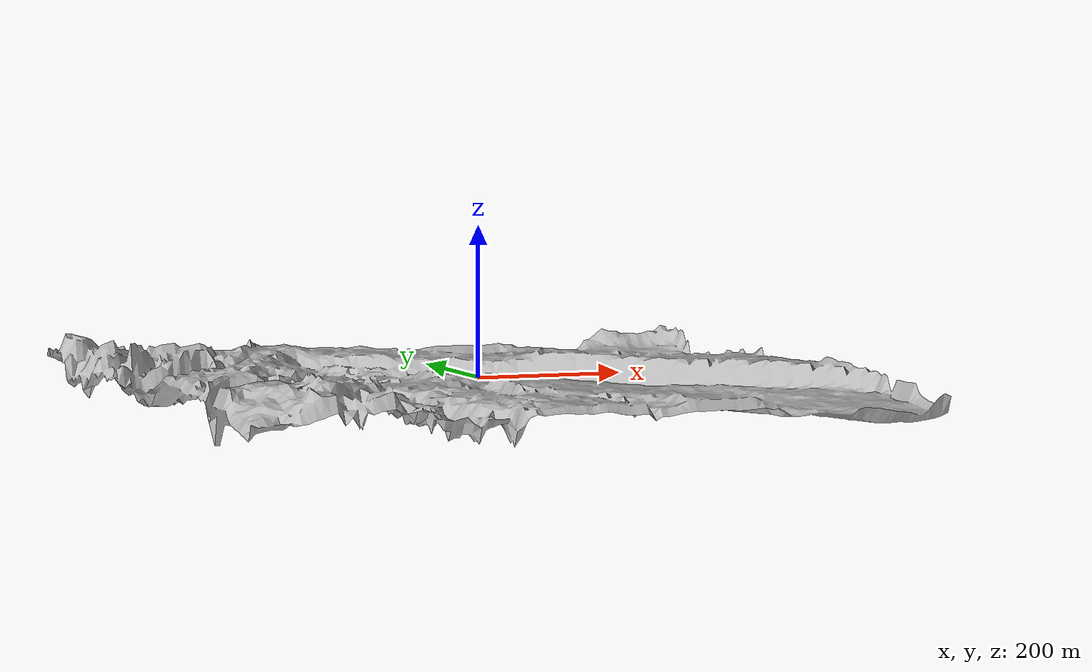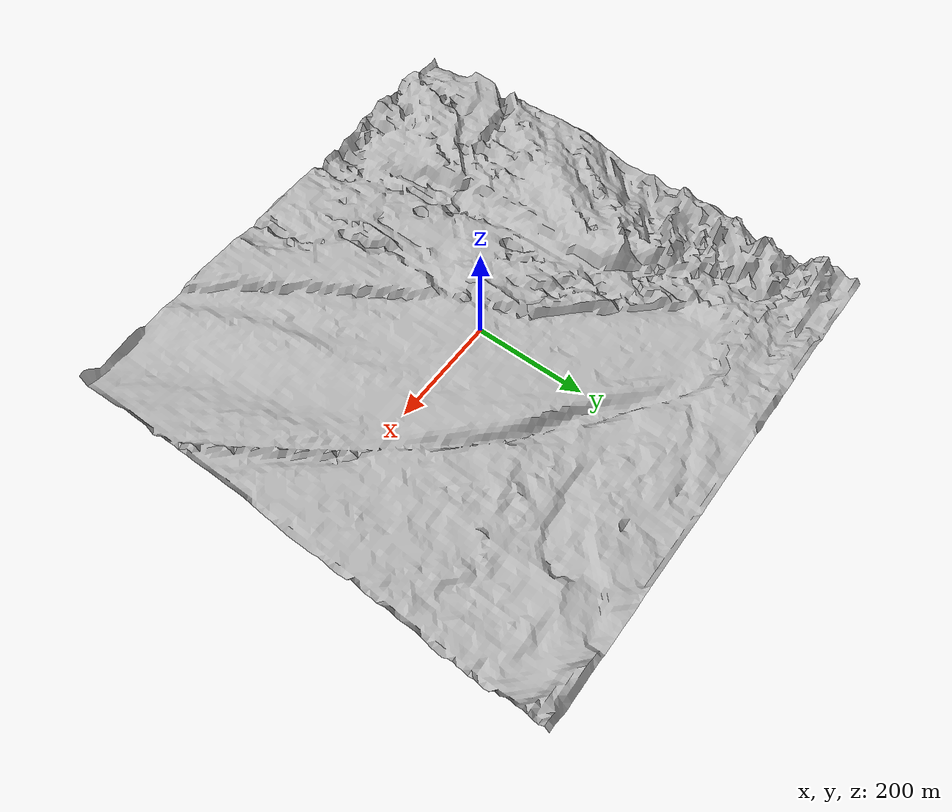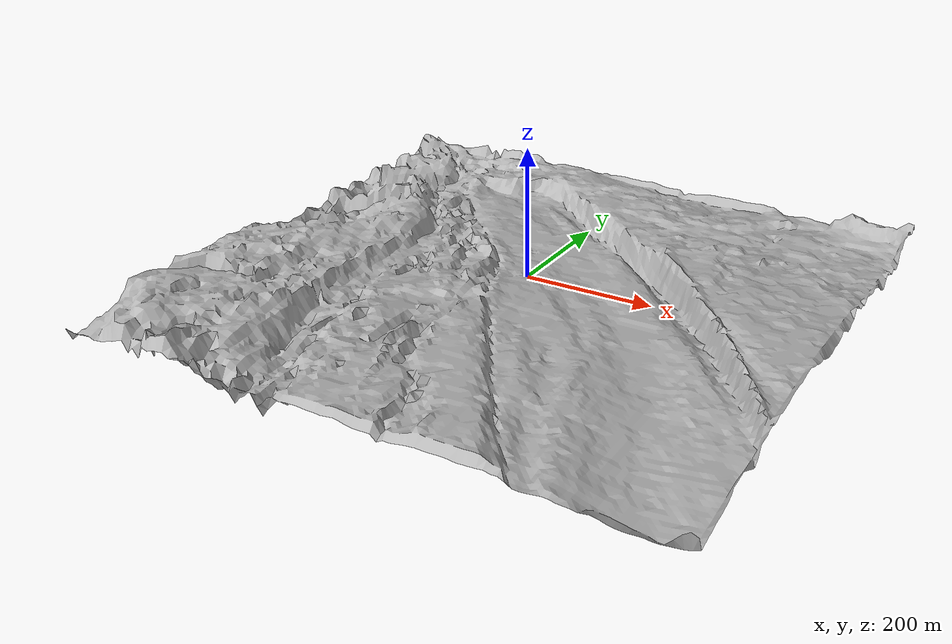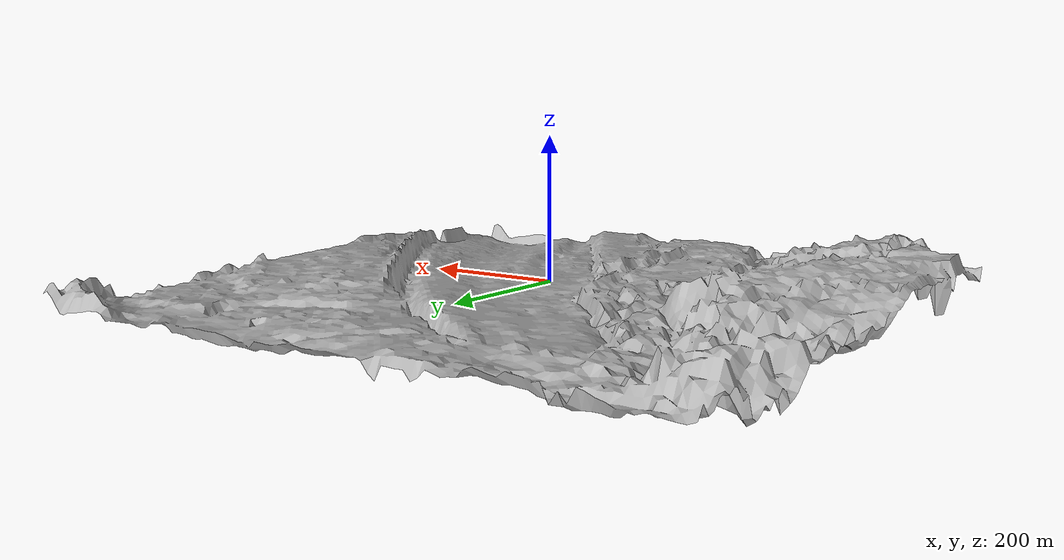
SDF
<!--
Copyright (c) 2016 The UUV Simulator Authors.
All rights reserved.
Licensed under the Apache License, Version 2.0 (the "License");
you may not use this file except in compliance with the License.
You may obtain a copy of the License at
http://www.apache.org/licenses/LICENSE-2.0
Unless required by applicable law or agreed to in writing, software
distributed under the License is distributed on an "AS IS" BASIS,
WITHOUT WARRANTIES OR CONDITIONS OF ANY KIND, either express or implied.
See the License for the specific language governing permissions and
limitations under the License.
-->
<?xml version="1.0" ?>
<sdf version="1.5">
  <model name="sand_heightmap">
    <static>true</static>
    <link name="link">
      <collision name="ground">
        <pose>0 0 0 0 0 0</pose>
        <geometry>
          <mesh>
            <uri>model://sand_heightmap/meshes/heightmap.dae</uri>
            <scale>2 2 2</scale>
          </mesh>
        </geometry>
      </collision>

      <visual name="ground_sand">
        <cast_shadows>true</cast_shadows>
        <pose>0 0 0 0 0 0</pose>
        <geometry>
          <mesh>
            <uri>model://sand_heightmap/meshes/heightmap.dae</uri>
            <scale>2 2 2</scale>
          </mesh>
        </geometry>
      </visual>
    </link>
  </model>
</sdf>
